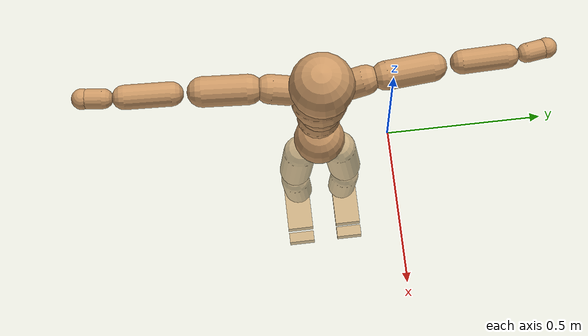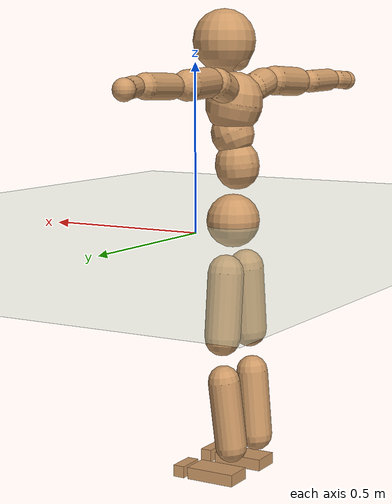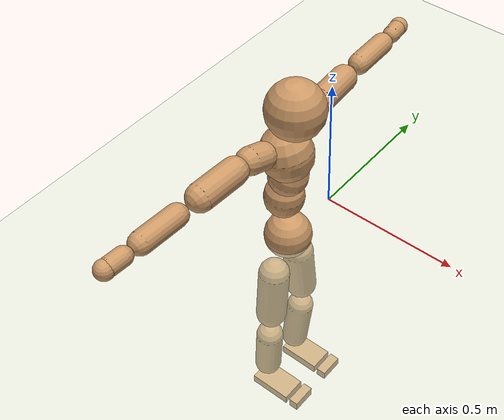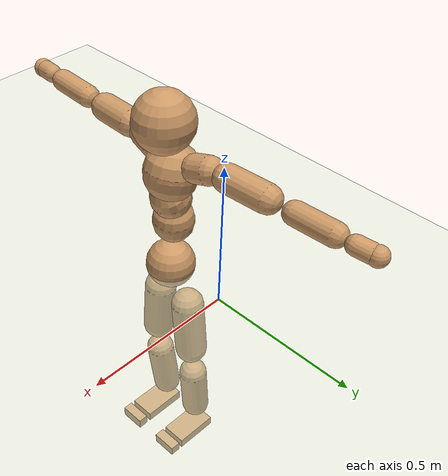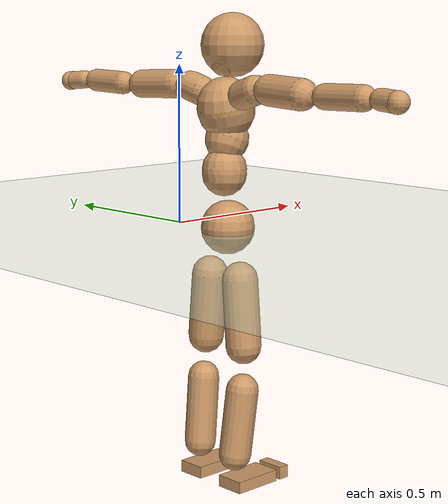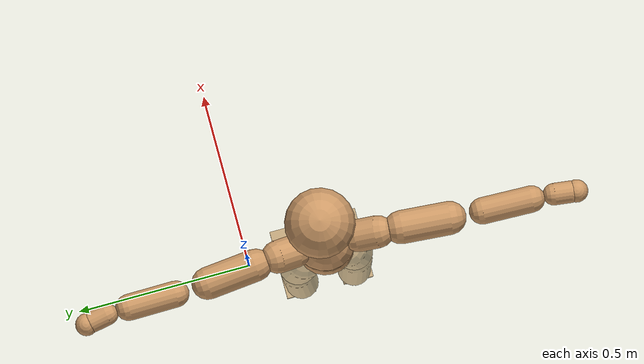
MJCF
<mujoco model="humanoid">
  <compiler coordinate="local"/>
  <default>
    <joint damping="0.0" armature="0.01" stiffness="0.0" limited="true"/>
    <geom conaffinity="1" condim="3" contype="7" margin="0.001" rgba="0.8 0.6 .4 1"/>
  </default>
  <asset>
    <texture type="skybox" builtin="gradient" rgb1=".4 .5 .6" rgb2="0 0 0" width="100" height="100"/>
    <texture builtin="flat" height="1278" mark="cross" markrgb="1 1 1" name="texgeom" random="0.01" rgb1="0.8 0.6 0.4" rgb2="0.8 0.6 0.4" type="cube" width="127"/>
    <texture builtin="checker" height="100" name="texplane" rgb1="0 0 0" rgb2="0.8 0.8 0.8" type="2d" width="100"/>
    <material name="MatPlane" reflectance="0.5" shininess="1" specular="1" texrepeat="60 60" texture="texplane"/>
    <material name="geom" texture="texgeom" texuniform="true"/>
  </asset>
  <worldbody>
    <light cutoff="100" diffuse="1 1 1" dir="-0 0 -1.3" directional="true" exponent="1" pos="0 0 1.3" specular=".1 .1 .1"/>
    <geom conaffinity="1" condim="3" name="floor" pos="0 0 0" rgba="0.8 0.9 0.8 1" size="100 100 .2" type="plane" material="MatPlane"/>
    <body name="Pelvis" pos="-0.0027 -0.2232 0.014">
      <freejoint name="Pelvis"/>
      <geom type="sphere" contype="1" conaffinity="1" density="4629.6296296296305" size="0.0830" pos="0.0000 0.0000 0.0000" name="Pelvis"/>
      <body name="L_Hip" pos="-0.0124 0.0604 -0.0861">
        <joint name="L_Hip_x" type="hinge" pos="0 0 0" axis="1 0 0" stiffness="800" damping="80" armature="0.02" range="-90.0000 90.0000"/>
        <joint name="L_Hip_y" type="hinge" pos="0 0 0" axis="0 1 0" stiffness="800" damping="80" armature="0.02" range="-90.0000 90.0000"/>
        <joint name="L_Hip_z" type="hinge" pos="0 0 0" axis="0 0 1" stiffness="800" damping="80" armature="0.02" range="-90.0000 90.0000"/>
        <geom type="capsule" contype="1" conaffinity="1" density="2040.816327" fromto="0.0002 0.0063 -0.0670 0.0008 0.0253 -0.2682" size="0.0557" name="L_Hip"/>
        <body name="L_Knee" pos="0.001 0.0316 -0.3352">
          <joint name="L_Knee_x" type="hinge" pos="0 0 0" axis="1 0 0" stiffness="800" damping="80" armature="0.02" range="-5.6250 5.6250"/>
          <joint name="L_Knee_y" type="hinge" pos="0 0 0" axis="0 1 0" stiffness="800" damping="80" armature="0.02" range="0.0000 180.0000"/>
          <joint name="L_Knee_z" type="hinge" pos="0 0 0" axis="0 0 1" stiffness="800" damping="80" armature="0.02" range="-5.6250 5.6250"/>
          <geom type="capsule" contype="1" conaffinity="1" density="1234.567901" fromto="-0.0075 -0.0026 -0.0685 -0.0299 -0.0102 -0.2739" size="0.0496" name="L_Knee"/>
          <body name="L_Ankle" pos="-0.0374 -0.0128 -0.3423">
            <joint name="L_Ankle_x" type="hinge" pos="0 0 0" axis="1 0 0" stiffness="800" damping="80" armature="0.02" range="-45.0000 45.0000"/>
            <joint name="L_Ankle_y" type="hinge" pos="0 0 0" axis="0 1 0" stiffness="800" damping="80" armature="0.02" range="-90.0000 90.0000"/>
            <joint name="L_Ankle_z" type="hinge" pos="0 0 0" axis="0 0 1" stiffness="800" damping="80" armature="0.02" range="-45.0000 45.0000"/>
            <geom type="box" contype="1" conaffinity="1" density="1000.000047" pos="0.0550 0.0121 -0.0243" size="0.079 0.045 0.0186" quat="1.0000 0.0000 0.0000 0.0000" name="L_Ankle"/>
            <body name="L_Toe" pos="0.1101 0.0241 -0.0486">
              <joint name="L_Toe_x" type="hinge" pos="0 0 0" axis="1 0 0" stiffness="500" damping="50" armature="0.02" range="-180.0000 180.0000"/>
              <joint name="L_Toe_y" type="hinge" pos="0 0 0" axis="0 1 0" stiffness="500" damping="50" armature="0.02" range="-180.0000 180.0000"/>
              <joint name="L_Toe_z" type="hinge" pos="0 0 0" axis="0 0 1" stiffness="500" damping="50" armature="0.02" range="-180.0000 180.0000"/>
              <geom type="box" contype="1" conaffinity="1" density="1004.883541" pos="0.0560 -0.0121 0.0240" size="0.0187 0.0449 0.0183" quat="1.0000 0.0000 0.0000 0.0000" name="L_Toe"/>
            </body>
          </body>
        </body>
      </body>
      <body name="R_Hip" pos="-0.0105 -0.0588 -0.0846">
        <joint name="R_Hip_x" type="hinge" pos="0 0 0" axis="1 0 0" stiffness="800" damping="80" armature="0.02" range="-90.0000 90.0000"/>
        <joint name="R_Hip_y" type="hinge" pos="0 0 0" axis="0 1 0" stiffness="800" damping="80" armature="0.02" range="-90.0000 90.0000"/>
        <joint name="R_Hip_z" type="hinge" pos="0 0 0" axis="0 0 1" stiffness="800" damping="80" armature="0.02" range="-90.0000 90.0000"/>
        <geom type="capsule" contype="1" conaffinity="1" density="2040.816327" fromto="-0.0008 -0.0066 -0.0683 -0.0033 -0.0263 -0.2730" size="0.0549" name="R_Hip"/>
        <body name="R_Knee" pos="-0.0041 -0.0329 -0.3413">
          <joint name="R_Knee_x" type="hinge" pos="0 0 0" axis="1 0 0" stiffness="800" damping="80" armature="0.02" range="-5.6250 5.6250"/>
          <joint name="R_Knee_y" type="hinge" pos="0 0 0" axis="0 1 0" stiffness="800" damping="80" armature="0.02" range="0.0000 180.0000"/>
          <joint name="R_Knee_z" type="hinge" pos="0 0 0" axis="0 0 1" stiffness="800" damping="80" armature="0.02" range="-5.6250 5.6250"/>
          <geom type="capsule" contype="1" conaffinity="1" density="1234.567901" fromto="-0.0074 0.0029 -0.0682 -0.0294 0.0117 -0.2728" size="0.05" name="R_Knee"/>
          <body name="R_Ankle" pos="-0.0368 0.0146 -0.341">
            <joint name="R_Ankle_x" type="hinge" pos="0 0 0" axis="1 0 0" stiffness="800" damping="80" armature="0.02" range="-45.0000 45.0000"/>
            <joint name="R_Ankle_y" type="hinge" pos="0 0 0" axis="0 1 0" stiffness="800" damping="80" armature="0.02" range="-90.0000 90.0000"/>
            <joint name="R_Ankle_z" type="hinge" pos="0 0 0" axis="0 0 1" stiffness="800" damping="80" armature="0.02" range="-45.0000 45.0000"/>
            <geom type="box" contype="1" conaffinity="1" density="999.999989" pos="0.0571 -0.0098 -0.0207" size="0.0809 0.0461 0.0183" quat="1.0000 0.0000 0.0000 0.0000" name="R_Ankle"/>
            <body name="R_Toe" pos="0.1143 -0.0195 -0.0414">
              <joint name="R_Toe_x" type="hinge" pos="0 0 0" axis="1 0 0" stiffness="500" damping="50" armature="0.02" range="-180.0000 180.0000"/>
              <joint name="R_Toe_y" type="hinge" pos="0 0 0" axis="0 1 0" stiffness="500" damping="50" armature="0.02" range="-180.0000 180.0000"/>
              <joint name="R_Toe_z" type="hinge" pos="0 0 0" axis="0 0 1" stiffness="500" damping="50" armature="0.02" range="-180.0000 180.0000"/>
              <geom type="box" contype="1" conaffinity="1" density="1015.984479" pos="0.0581 0.0098 0.0223" size="0.018 0.0454 0.0199" quat="1.0000 0.0000 0.0000 0.0000" name="R_Toe"/>
            </body>
          </body>
        </body>
      </body>
      <body name="Torso" pos="-0.0177 -0.0026 0.1023">
        <joint name="Torso_x" type="hinge" pos="0 0 0" axis="1 0 0" stiffness="1000" damping="100" armature="0.02" range="-60.0000 60.0000"/>
        <joint name="Torso_y" type="hinge" pos="0 0 0" axis="0 1 0" stiffness="1000" damping="100" armature="0.02" range="-60.0000 60.0000"/>
        <joint name="Torso_z" type="hinge" pos="0 0 0" axis="0 0 1" stiffness="1000" damping="100" armature="0.02" range="-60.0000 60.0000"/>
        <geom type="capsule" contype="1" conaffinity="1" density="2040.816327" fromto="0.0031 0.0030 0.0634 0.0038 0.0036 0.0775" size="0.0683" name="Torso"/>
        <body name="Spine" pos="0.007 0.0066 0.1409">
          <joint name="Spine_x" type="hinge" pos="0 0 0" axis="1 0 0" stiffness="1000" damping="100" armature="0.02" range="-60.0000 60.0000"/>
          <joint name="Spine_y" type="hinge" pos="0 0 0" axis="0 1 0" stiffness="1000" damping="100" armature="0.02" range="-60.0000 60.0000"/>
          <joint name="Spine_z" type="hinge" pos="0 0 0" axis="0 0 1" stiffness="1000" damping="100" armature="0.02" range="-60.0000 60.0000"/>
          <geom type="capsule" contype="1" conaffinity="1" density="2040.816327" fromto="0.0100 0.0006 0.0237 0.0122 0.0008 0.0289" size="0.0666" name="Spine"/>
          <body name="Chest" pos="0.0221 0.0014 0.0526">
            <joint name="Chest_x" type="hinge" pos="0 0 0" axis="1 0 0" stiffness="1000" damping="100" armature="0.02" range="-60.0000 60.0000"/>
            <joint name="Chest_y" type="hinge" pos="0 0 0" axis="0 1 0" stiffness="1000" damping="100" armature="0.02" range="-60.0000 60.0000"/>
            <joint name="Chest_z" type="hinge" pos="0 0 0" axis="0 0 1" stiffness="1000" damping="100" armature="0.02" range="-60.0000 60.0000"/>
            <geom type="capsule" contype="1" conaffinity="1" density="2040.816327" fromto="-0.0142 -0.0008 0.0607 -0.0173 -0.0010 0.0742" size="0.0881" name="Chest"/>
            <body name="Neck" pos="-0.0332 -0.0022 0.1903">
              <joint name="Neck_x" type="hinge" pos="0 0 0" axis="1 0 0" stiffness="500" damping="50" armature="0.02" range="-5.6250 5.6250"/>
              <joint name="Neck_y" type="hinge" pos="0 0 0" axis="0 1 0" stiffness="500" damping="50" armature="0.02" range="-90.0000 90.0000"/>
              <joint name="Neck_z" type="hinge" pos="0 0 0" axis="0 0 1" stiffness="500" damping="50" armature="0.02" range="-90.0000 90.0000"/>
              <geom type="capsule" contype="1" conaffinity="1" density="1000" fromto="0.0098 0.0013 0.0128 0.0393 0.0051 0.0512" size="0.0405" name="Neck"/>
              <body name="Head" pos="0.0491 0.0064 0.0641">
                <joint name="Head_x" type="hinge" pos="0 0 0" axis="1 0 0" stiffness="500" damping="50" armature="0.02" range="-5.6250 5.6250"/>
                <joint name="Head_y" type="hinge" pos="0 0 0" axis="0 1 0" stiffness="500" damping="50" armature="0.02" range="-90.0000 90.0000"/>
                <joint name="Head_z" type="hinge" pos="0 0 0" axis="0 0 1" stiffness="500" damping="50" armature="0.02" range="-90.0000 90.0000"/>
                <geom type="sphere" contype="1" conaffinity="1" density="1000" size="0.0968" pos="0.0000 0.0000 0.0000" name="Head"/>
              </body>
            </body>
            <body name="L_Thorax" pos="-0.0285 0.0703 0.1087">
              <joint name="L_Thorax_x" type="hinge" pos="0 0 0" axis="1 0 0" stiffness="500" damping="50" armature="0.02" range="-5.6250 5.6250"/>
              <joint name="L_Thorax_y" type="hinge" pos="0 0 0" axis="0 1 0" stiffness="500" damping="50" armature="0.02" range="-5.6250 5.6250"/>
              <joint name="L_Thorax_z" type="hinge" pos="0 0 0" axis="0 0 1" stiffness="500" damping="50" armature="0.02" range="-5.6250 5.6250"/>
              <geom type="capsule" contype="1" conaffinity="1" density="1000" fromto="-0.0014 0.0169 0.0052 -0.0056 0.0674 0.0207" size="0.0457" name="L_Thorax"/>
              <body name="L_Shoulder" pos="-0.007 0.0843 0.0258">
                <joint name="L_Shoulder_x" type="hinge" pos="0 0 0" axis="1 0 0" stiffness="500" damping="50" armature="0.02" range="-720.0000 720.0000"/>
                <joint name="L_Shoulder_y" type="hinge" pos="0 0 0" axis="0 1 0" stiffness="500" damping="50" armature="0.02" range="-720.0000 720.0000"/>
                <joint name="L_Shoulder_z" type="hinge" pos="0 0 0" axis="0 0 1" stiffness="500" damping="50" armature="0.02" range="-720.0000 720.0000"/>
                <geom type="capsule" contype="1" conaffinity="1" density="1000" fromto="-0.0045 0.0465 -0.0018 -0.0181 0.1860 -0.0074" size="0.0449" name="L_Shoulder"/>
                <body name="L_Elbow" pos="-0.0227 0.2325 -0.0092">
                  <joint name="L_Elbow_x" type="hinge" pos="0 0 0" axis="1 0 0" stiffness="500" damping="50" armature="0.02" range="-5.6250 5.6250"/>
                  <joint name="L_Elbow_y" type="hinge" pos="0 0 0" axis="0 1 0" stiffness="500" damping="50" armature="0.02" range="-5.6250 5.6250"/>
                  <joint name="L_Elbow_z" type="hinge" pos="0 0 0" axis="0 0 1" stiffness="500" damping="50" armature="0.02" range="-180.0000 0.0000"/>
                  <geom type="capsule" contype="1" conaffinity="1" density="1000" fromto="-0.0007 0.0449 0.0012 -0.0026 0.1794 0.0047" size="0.0366" name="L_Elbow"/>
                  <body name="L_Wrist" pos="-0.0033 0.2243 0.0059">
                    <joint name="L_Wrist_x" type="hinge" pos="0 0 0" axis="1 0 0" stiffness="300" damping="30" armature="0.02" range="-180.0000 180.0000"/>
                    <joint name="L_Wrist_y" type="hinge" pos="0 0 0" axis="0 1 0" stiffness="300" damping="30" armature="0.02" range="-180.0000 180.0000"/>
                    <joint name="L_Wrist_z" type="hinge" pos="0 0 0" axis="0 0 1" stiffness="300" damping="30" armature="0.02" range="-180.0000 180.0000"/>
                    <geom type="capsule" contype="1" conaffinity="1" density="1000" fromto="-0.0028 0.0156 -0.0014 -0.0113 0.0624 -0.0057" size="0.0296" name="L_Wrist"/>
                    <body name="L_Hand" pos="-0.0142 0.078 -0.0071">
                      <joint name="L_Hand_x" type="hinge" pos="0 0 0" axis="1 0 0" stiffness="300" damping="30" armature="0.02" range="-180.0000 180.0000"/>
                      <joint name="L_Hand_y" type="hinge" pos="0 0 0" axis="0 1 0" stiffness="300" damping="30" armature="0.02" range="-180.0000 180.0000"/>
                      <joint name="L_Hand_z" type="hinge" pos="0 0 0" axis="0 0 1" stiffness="300" damping="30" armature="0.02" range="-180.0000 180.0000"/>
                      <geom type="sphere" contype="1" conaffinity="1" density="1000" size="0.0313" pos="0.0000 0.0000 0.0000" name="L_Hand"/>
                    </body>
                  </body>
                </body>
              </body>
            </body>
            <body name="R_Thorax" pos="-0.0327 -0.0735 0.1055">
              <joint name="R_Thorax_x" type="hinge" pos="0 0 0" axis="1 0 0" stiffness="500" damping="50" armature="0.02" range="-5.6250 5.6250"/>
              <joint name="R_Thorax_y" type="hinge" pos="0 0 0" axis="0 1 0" stiffness="500" damping="50" armature="0.02" range="-5.6250 5.6250"/>
              <joint name="R_Thorax_z" type="hinge" pos="0 0 0" axis="0 0 1" stiffness="500" damping="50" armature="0.02" range="-5.6250 5.6250"/>
              <geom type="capsule" contype="1" conaffinity="1" density="1000" fromto="-0.0016 -0.0182 0.0055 -0.0063 -0.0727 0.0220" size="0.0452" name="R_Thorax"/>
              <body name="R_Shoulder" pos="-0.0078 -0.0908 0.0275">
                <joint name="R_Shoulder_x" type="hinge" pos="0 0 0" axis="1 0 0" stiffness="500" damping="50" armature="0.02" range="-720.0000 720.0000"/>
                <joint name="R_Shoulder_y" type="hinge" pos="0 0 0" axis="0 1 0" stiffness="500" damping="50" armature="0.02" range="-720.0000 720.0000"/>
                <joint name="R_Shoulder_z" type="hinge" pos="0 0 0" axis="0 0 1" stiffness="500" damping="50" armature="0.02" range="-720.0000 720.0000"/>
                <geom type="capsule" contype="1" conaffinity="1" density="1000" fromto="-0.0034 -0.0453 -0.0019 -0.0135 -0.1813 -0.0076" size="0.0463" name="R_Shoulder"/>
                <body name="R_Elbow" pos="-0.0169 -0.2266 -0.0095">
                  <joint name="R_Elbow_x" type="hinge" pos="0 0 0" axis="1 0 0" stiffness="500" damping="50" armature="0.02" range="-5.6250 5.6250"/>
                  <joint name="R_Elbow_y" type="hinge" pos="0 0 0" axis="0 1 0" stiffness="500" damping="50" armature="0.02" range="-5.6250 5.6250"/>
                  <joint name="R_Elbow_z" type="hinge" pos="0 0 0" axis="0 0 1" stiffness="500" damping="50" armature="0.02" range="0.0000 180.0000"/>
                  <geom type="capsule" contype="1" conaffinity="1" density="1000" fromto="-0.0013 -0.0463 0.0010 -0.0054 -0.1851 0.0040" size="0.037" name="R_Elbow"/>
                  <body name="R_Wrist" pos="-0.0067 -0.2314 0.0051">
                    <joint name="R_Wrist_x" type="hinge" pos="0 0 0" axis="1 0 0" stiffness="300" damping="30" armature="0.02" range="-180.0000 180.0000"/>
                    <joint name="R_Wrist_y" type="hinge" pos="0 0 0" axis="0 1 0" stiffness="300" damping="30" armature="0.02" range="-180.0000 180.0000"/>
                    <joint name="R_Wrist_z" type="hinge" pos="0 0 0" axis="0 0 1" stiffness="300" damping="30" armature="0.02" range="-180.0000 180.0000"/>
                    <geom type="capsule" contype="1" conaffinity="1" density="1000" fromto="-0.0019 -0.0158 -0.0011 -0.0075 -0.0632 -0.0042" size="0.0305" name="R_Wrist"/>
                    <body name="R_Hand" pos="-0.0094 -0.0789 -0.0053">
                      <joint name="R_Hand_x" type="hinge" pos="0 0 0" axis="1 0 0" stiffness="300" damping="30" armature="0.02" range="-180.0000 180.0000"/>
                      <joint name="R_Hand_y" type="hinge" pos="0 0 0" axis="0 1 0" stiffness="300" damping="30" armature="0.02" range="-180.0000 180.0000"/>
                      <joint name="R_Hand_z" type="hinge" pos="0 0 0" axis="0 0 1" stiffness="300" damping="30" armature="0.02" range="-180.0000 180.0000"/>
                      <geom type="sphere" contype="1" conaffinity="1" density="1000" size="0.0318" pos="0.0000 0.0000 0.0000" name="R_Hand"/>
                    </body>
                  </body>
                </body>
              </body>
            </body>
          </body>
        </body>
      </body>
    </body>
  </worldbody>
  <actuator>
    <motor name="L_Hip_x" joint="L_Hip_x" gear="500"/>
    <motor name="L_Hip_y" joint="L_Hip_y" gear="500"/>
    <motor name="L_Hip_z" joint="L_Hip_z" gear="500"/>
    <motor name="L_Knee_x" joint="L_Knee_x" gear="500"/>
    <motor name="L_Knee_y" joint="L_Knee_y" gear="500"/>
    <motor name="L_Knee_z" joint="L_Knee_z" gear="500"/>
    <motor name="L_Ankle_x" joint="L_Ankle_x" gear="500"/>
    <motor name="L_Ankle_y" joint="L_Ankle_y" gear="500"/>
    <motor name="L_Ankle_z" joint="L_Ankle_z" gear="500"/>
    <motor name="L_Toe_x" joint="L_Toe_x" gear="500"/>
    <motor name="L_Toe_y" joint="L_Toe_y" gear="500"/>
    <motor name="L_Toe_z" joint="L_Toe_z" gear="500"/>
    <motor name="R_Hip_x" joint="R_Hip_x" gear="500"/>
    <motor name="R_Hip_y" joint="R_Hip_y" gear="500"/>
    <motor name="R_Hip_z" joint="R_Hip_z" gear="500"/>
    <motor name="R_Knee_x" joint="R_Knee_x" gear="500"/>
    <motor name="R_Knee_y" joint="R_Knee_y" gear="500"/>
    <motor name="R_Knee_z" joint="R_Knee_z" gear="500"/>
    <motor name="R_Ankle_x" joint="R_Ankle_x" gear="500"/>
    <motor name="R_Ankle_y" joint="R_Ankle_y" gear="500"/>
    <motor name="R_Ankle_z" joint="R_Ankle_z" gear="500"/>
    <motor name="R_Toe_x" joint="R_Toe_x" gear="500"/>
    <motor name="R_Toe_y" joint="R_Toe_y" gear="500"/>
    <motor name="R_Toe_z" joint="R_Toe_z" gear="500"/>
    <motor name="Torso_x" joint="Torso_x" gear="500"/>
    <motor name="Torso_y" joint="Torso_y" gear="500"/>
    <motor name="Torso_z" joint="Torso_z" gear="500"/>
    <motor name="Spine_x" joint="Spine_x" gear="500"/>
    <motor name="Spine_y" joint="Spine_y" gear="500"/>
    <motor name="Spine_z" joint="Spine_z" gear="500"/>
    <motor name="Chest_x" joint="Chest_x" gear="500"/>
    <motor name="Chest_y" joint="Chest_y" gear="500"/>
    <motor name="Chest_z" joint="Chest_z" gear="500"/>
    <motor name="Neck_x" joint="Neck_x" gear="500"/>
    <motor name="Neck_y" joint="Neck_y" gear="500"/>
    <motor name="Neck_z" joint="Neck_z" gear="500"/>
    <motor name="Head_x" joint="Head_x" gear="500"/>
    <motor name="Head_y" joint="Head_y" gear="500"/>
    <motor name="Head_z" joint="Head_z" gear="500"/>
    <motor name="L_Thorax_x" joint="L_Thorax_x" gear="500"/>
    <motor name="L_Thorax_y" joint="L_Thorax_y" gear="500"/>
    <motor name="L_Thorax_z" joint="L_Thorax_z" gear="500"/>
    <motor name="L_Shoulder_x" joint="L_Shoulder_x" gear="500"/>
    <motor name="L_Shoulder_y" joint="L_Shoulder_y" gear="500"/>
    <motor name="L_Shoulder_z" joint="L_Shoulder_z" gear="500"/>
    <motor name="L_Elbow_x" joint="L_Elbow_x" gear="500"/>
    <motor name="L_Elbow_y" joint="L_Elbow_y" gear="500"/>
    <motor name="L_Elbow_z" joint="L_Elbow_z" gear="500"/>
    <motor name="L_Wrist_x" joint="L_Wrist_x" gear="500"/>
    <motor name="L_Wrist_y" joint="L_Wrist_y" gear="500"/>
    <motor name="L_Wrist_z" joint="L_Wrist_z" gear="500"/>
    <motor name="L_Hand_x" joint="L_Hand_x" gear="500"/>
    <motor name="L_Hand_y" joint="L_Hand_y" gear="500"/>
    <motor name="L_Hand_z" joint="L_Hand_z" gear="500"/>
    <motor name="R_Thorax_x" joint="R_Thorax_x" gear="500"/>
    <motor name="R_Thorax_y" joint="R_Thorax_y" gear="500"/>
    <motor name="R_Thorax_z" joint="R_Thorax_z" gear="500"/>
    <motor name="R_Shoulder_x" joint="R_Shoulder_x" gear="500"/>
    <motor name="R_Shoulder_y" joint="R_Shoulder_y" gear="500"/>
    <motor name="R_Shoulder_z" joint="R_Shoulder_z" gear="500"/>
    <motor name="R_Elbow_x" joint="R_Elbow_x" gear="500"/>
    <motor name="R_Elbow_y" joint="R_Elbow_y" gear="500"/>
    <motor name="R_Elbow_z" joint="R_Elbow_z" gear="500"/>
    <motor name="R_Wrist_x" joint="R_Wrist_x" gear="500"/>
    <motor name="R_Wrist_y" joint="R_Wrist_y" gear="500"/>
    <motor name="R_Wrist_z" joint="R_Wrist_z" gear="500"/>
    <motor name="R_Hand_x" joint="R_Hand_x" gear="500"/>
    <motor name="R_Hand_y" joint="R_Hand_y" gear="500"/>
    <motor name="R_Hand_z" joint="R_Hand_z" gear="500"/>
  </actuator>
  <contact>
    <exclude body1="Torso" body2="Chest"/>
    <exclude body1="Head" body2="Chest"/>
    <exclude body1="R_Knee" body2="R_Toe"/>
    <exclude body1="R_Knee" body2="L_Ankle"/>
    <exclude body1="R_Knee" body2="L_Toe"/>
    <exclude body1="L_Knee" body2="L_Toe"/>
    <exclude body1="L_Knee" body2="R_Ankle"/>
    <exclude body1="L_Knee" body2="R_Toe"/>
    <exclude body1="L_Shoulder" body2="Chest"/>
    <exclude body1="R_Shoulder" body2="Chest"/>
  </contact>
  <sensor/>
  <size njmax="700" nconmax="700"/>
</mujoco>
